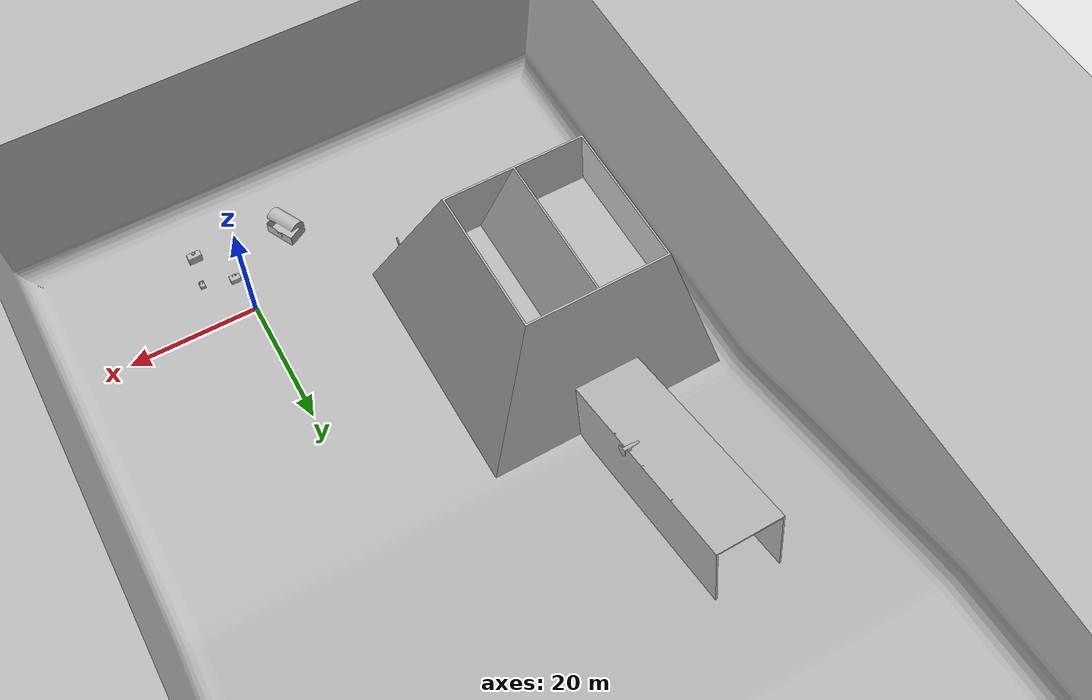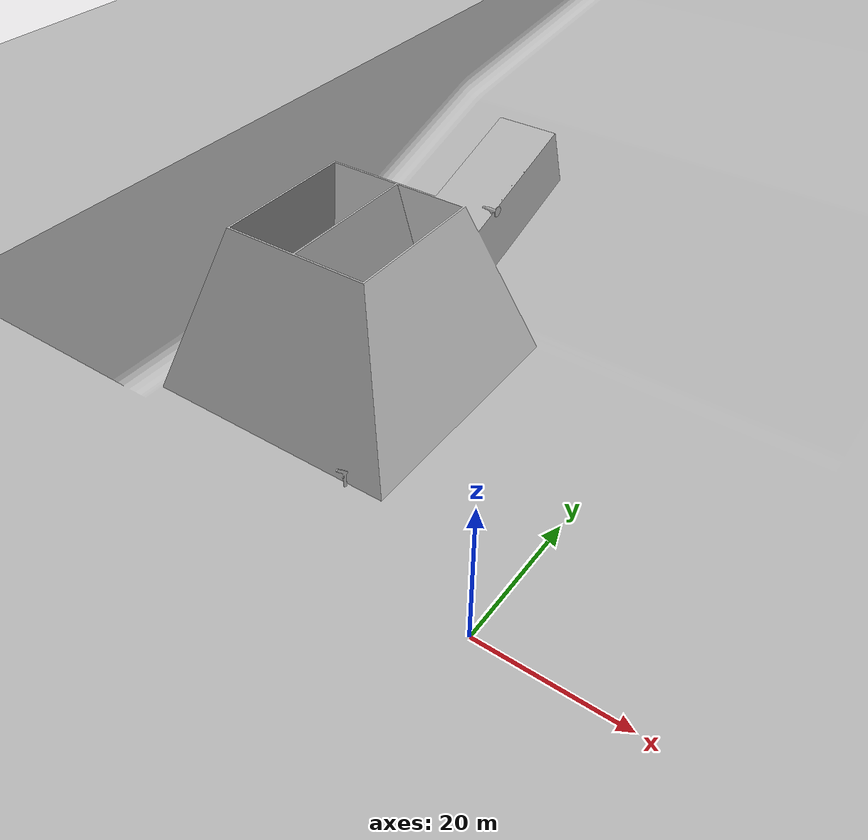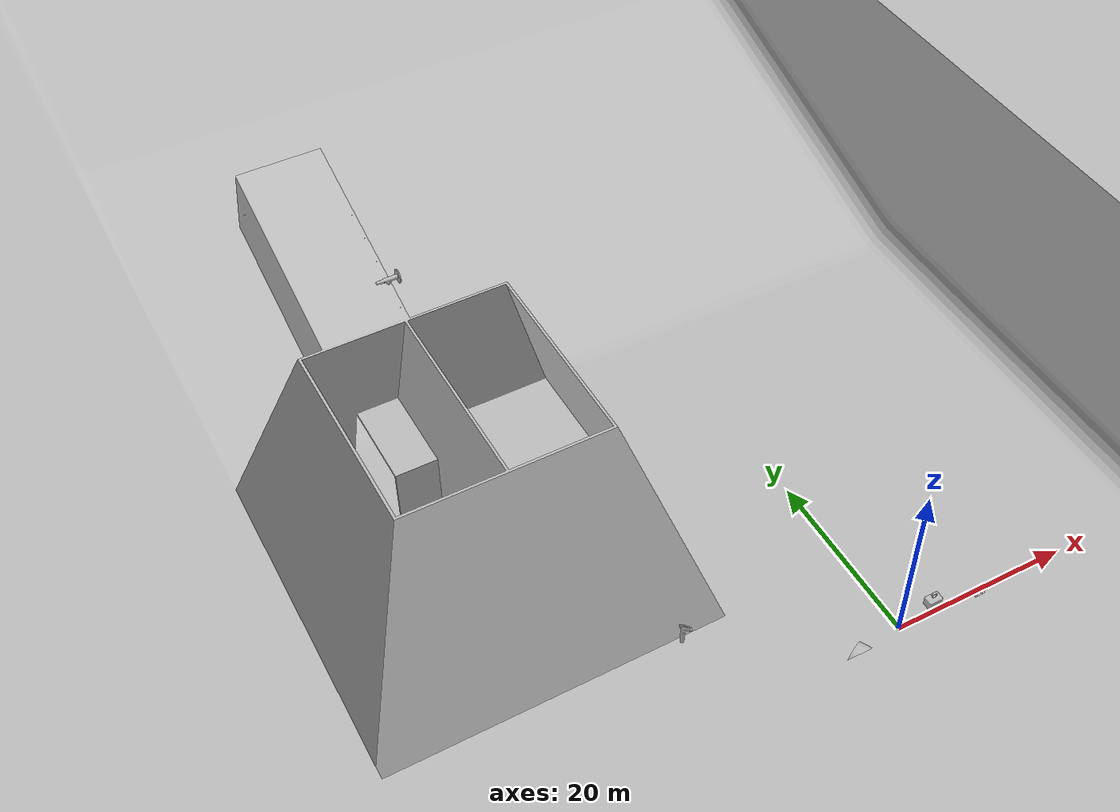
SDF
<sdf version="1.7">
 <world name="default">
  <light name="sun" type="directional">
   <pose>0 0 10 0 -0 0</pose>
   <diffuse>0.8 0.8 0.8 1</diffuse>
   <specular>0.2 0.2 0.2 1</specular>
   <attenuation>
    <range>1000</range>
    <constant>0.9</constant>
    <linear>0.01</linear>
    <quadratic>0.001</quadratic>
   </attenuation>
   <direction>-0.5 0.1 -0.9</direction>
   <spot><inner_angle>0</inner_angle><outer_angle>0</outer_angle><falloff>0</falloff></spot>
  </light>
  <gravity>0 0 -9.8</gravity>
  <magnetic_field>6e-06 2.3e-05 -4.2e-05</magnetic_field>
  <atmosphere type="adiabatic"/>
  <physics type="ode">
   <max_step_size>0.001</max_step_size>
   <real_time_factor>1</real_time_factor>
   <real_time_update_rate>1000</real_time_update_rate>
  </physics>
  <scene><ambient>0.4 0.4 0.4 1</ambient><background>0.7 0.7 0.7 1</background><shadows>1</shadows></scene>
  <audio><device>default</device></audio>
  <spherical_coordinates>
   <surface_model>EARTH_WGS84</surface_model>
   <latitude_deg>0</latitude_deg>
   <longitude_deg>0</longitude_deg>
   <elevation>0</elevation>
   <heading_deg>0</heading_deg>
  </spherical_coordinates>
  <model name="pool">
   <static>1</static>
   <link name="link">
    <visual name="visual">
     <geometry><mesh><uri>model://pool/meshes/pool.stl</uri><scale>0.01 0.01 0.01</scale></mesh></geometry>
    </visual>
    <collision name="collision">
     <geometry><mesh><uri>model://pool/meshes/pool.stl</uri><scale>0.01 0.01 0.01</scale></mesh></geometry>
    </collision>
    <inertial>
     <inertia><ixx>1</ixx><ixy>0</ixy><ixz>0</ixz><iyy>1</iyy><iyz>0</iyz><izz>1</izz></inertia>
     <mass>1</mass>
    </inertial>
   </link>
   <pose>-13.6123 -17.2665 33.6936 0 -0 0</pose>
  </model>
  <model name="ruin">
   <link name="link">
    <visual name="visual">
     <geometry><mesh><uri>model://ruin/meshes/ruin.stl</uri><scale>0.01 0.01 0.01</scale></mesh></geometry>
    </visual>
    <collision name="collision">
     <geometry><mesh><uri>model://ruin/meshes/ruin.stl</uri><scale>0.01 0.01 0.01</scale></mesh></geometry>
    </collision>
    <inertial>
     <inertia><ixx>1</ixx><ixy>0</ixy><ixz>0</ixz><iyy>1</iyy><iyz>0</iyz><izz>1</izz></inertia>
     <mass>1</mass>
    </inertial>
   </link>
   <pose>-35.088 24.2261 5.3575 0 0 -3.13319</pose>
  </model>
  <model name="chest">
   <link name="link">
    <visual name="visual">
     <geometry><mesh><uri>model://chest/meshes/chest.stl</uri><scale>0.01 0.01 0.01</scale></mesh></geometry>
    </visual>
    <collision name="collision">
     <geometry><mesh><uri>model://chest/meshes/chest.stl</uri><scale>0.01 0.01 0.01</scale></mesh></geometry>
    </collision>
    <inertial>
     <inertia><ixx>1</ixx><ixy>0</ixy><ixz>0</ixz><iyy>1</iyy><iyz>0</iyz><izz>1</izz></inertia>
     <mass>1</mass>
    </inertial>
   </link>
   <pose>-8.88047 -6.56687 5.7 0 -0 2.05</pose>
  </model>
  <model name="fragments_10lb">
   <link name="link">
    <visual name="visual">
     <geometry>
      <mesh><uri>model://fragments_10lb/meshes/fragments_10lb.stl</uri><scale>0.01 0.01 0.01</scale></mesh>
     </geometry>
    </visual>
    <collision name="collision">
     <geometry>
      <mesh><uri>model://fragments_10lb/meshes/fragments_10lb.stl</uri><scale>0.01 0.01 0.01</scale></mesh>
     </geometry>
    </collision>
    <inertial>
     <inertia><ixx>1</ixx><ixy>0</ixy><ixz>0</ixz><iyy>1</iyy><iyz>0</iyz><izz>1</izz></inertia>
     <mass>1</mass>
    </inertial>
   </link>
   <pose>2.76624 -8.3318 7.3 0 -0 0</pose>
  </model>
  <model name="fragments_2lb">
   <link name="link">
    <visual name="visual">
     <geometry>
      <mesh><uri>model://fragments_2lb/meshes/fragments_2lb.stl</uri><scale>0.01 0.01 0.01</scale></mesh>
     </geometry>
    </visual>
    <collision name="collision">
     <geometry>
      <mesh><uri>model://fragments_2lb/meshes/fragments_2lb.stl</uri><scale>0.01 0.01 0.01</scale></mesh>
     </geometry>
    </collision>
    <inertial>
     <inertia><ixx>1</ixx><ixy>0</ixy><ixz>0</ixz><iyy>1</iyy><iyz>0</iyz><izz>1</izz></inertia>
     <mass>1</mass>
    </inertial>
   </link>
   <pose>7.51974 -3.7488 6.5 0 -0 0</pose>
  </model>
  <model name="fragments_5lb">
   <link name="link">
    <visual name="visual">
     <geometry>
      <mesh><uri>model://fragments_5lb/meshes/fragments_5lb.stl</uri><scale>0.01 0.01 0.01</scale></mesh>
     </geometry>
    </visual>
    <collision name="collision">
     <geometry>
      <mesh><uri>model://fragments_5lb/meshes/fragments_5lb.stl</uri><scale>0.01 0.01 0.01</scale></mesh>
     </geometry>
    </collision>
    <inertial>
     <inertia><ixx>1</ixx><ixy>0</ixy><ixz>0</ixz><iyy>1</iyy><iyz>0</iyz><izz>1</izz></inertia>
     <mass>1</mass>
    </inertial>
   </link>
   <pose>1.25345 -2.22938 7 0 -0 0</pose>
  </model>
  <model name="relic">
   <link name="link">
    <visual name="visual">
     <geometry><mesh><uri>model://relic/meshes/relic.stl</uri><scale>0.01 0.01 0.01</scale></mesh></geometry>
    </visual>
    <collision name="collision">
     <geometry><mesh><uri>model://relic/meshes/relic.stl</uri><scale>0.01 0.01 0.01</scale></mesh></geometry>
    </collision>
    <inertial>
     <inertia><ixx>1</ixx><ixy>0</ixy><ixz>0</ixz><iyy>1</iyy><iyz>0</iyz><izz>1</izz></inertia>
     <mass>1</mass>
    </inertial>
   </link>
   <pose>-22.7021 -16.1835 29 0 -0 0</pose>
  </model>
  <model name="push_button">
   <link name="link">
    <visual name="visual">
     <geometry>
      <mesh><uri>model://push_button/meshes/push_button.stl</uri><scale>0.01 0.01 0.01</scale></mesh>
     </geometry>
    </visual>
    <collision name="collision">
     <geometry>
      <mesh><uri>model://push_button/meshes/push_button.stl</uri><scale>0.01 0.01 0.01</scale></mesh>
     </geometry>
    </collision>
    <inertial>
     <inertia><ixx>1</ixx><ixy>0</ixy><ixz>0</ixz><iyy>1</iyy><iyz>0</iyz><izz>1</izz></inertia>
     <mass>1</mass>
    </inertial>
   </link>
   <pose>-22.2 -25 25.4 0 -0 0</pose>
  </model>
  <model name="lever">
   <link name="link">
    <visual name="visual">
     <geometry><mesh><uri>model://lever/meshes/lever.stl</uri><scale>0.01 0.01 0.01</scale></mesh></geometry>
    </visual>
    <collision name="collision">
     <geometry><mesh><uri>model://lever/meshes/lever.stl</uri><scale>0.01 0.01 0.01</scale></mesh></geometry>
    </collision>
    <inertial>
     <inertia><ixx>1</ixx><ixy>0</ixy><ixz>0</ixz><iyy>1</iyy><iyz>0</iyz><izz>1</izz></inertia>
     <mass>1</mass>
    </inertial>
   </link>
   <pose>-8.771 -16.2796 28 0 -0 0</pose>
  </model>
 </world>
</sdf>
